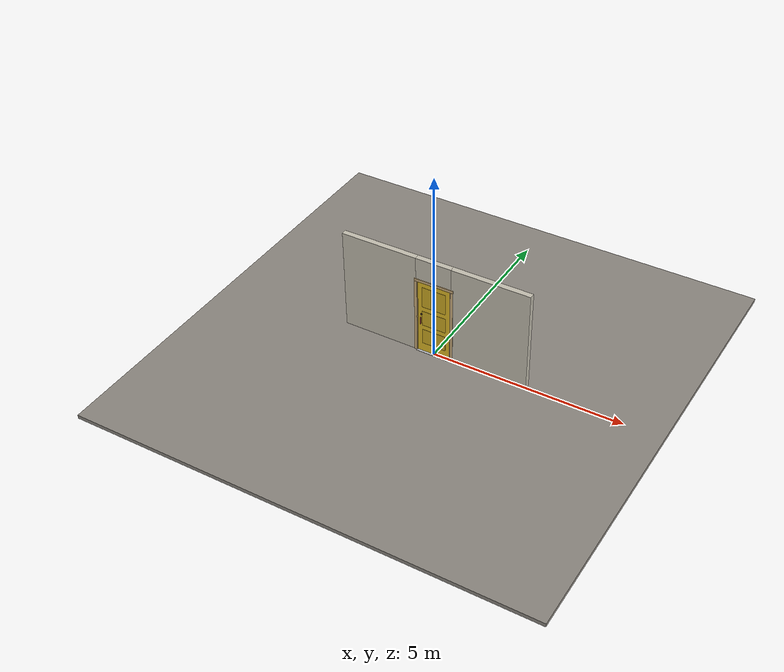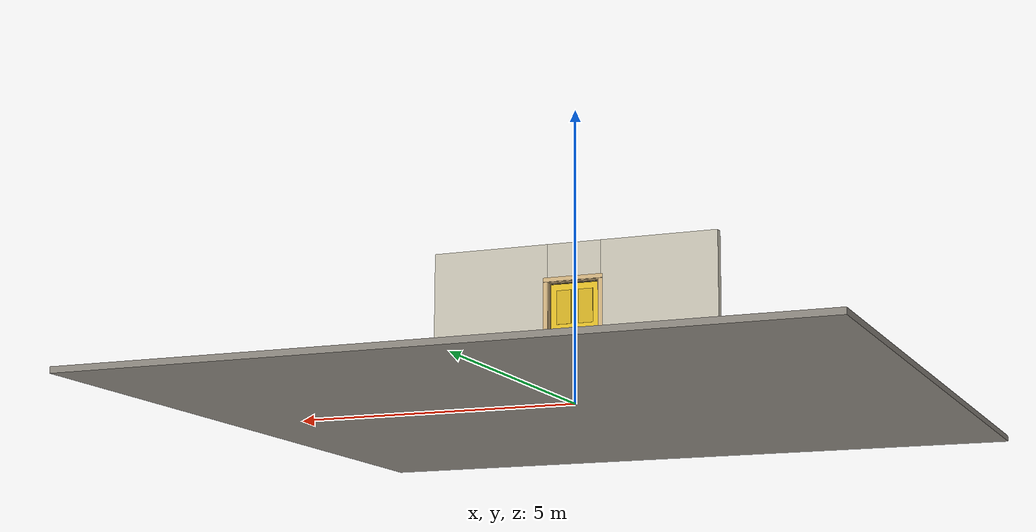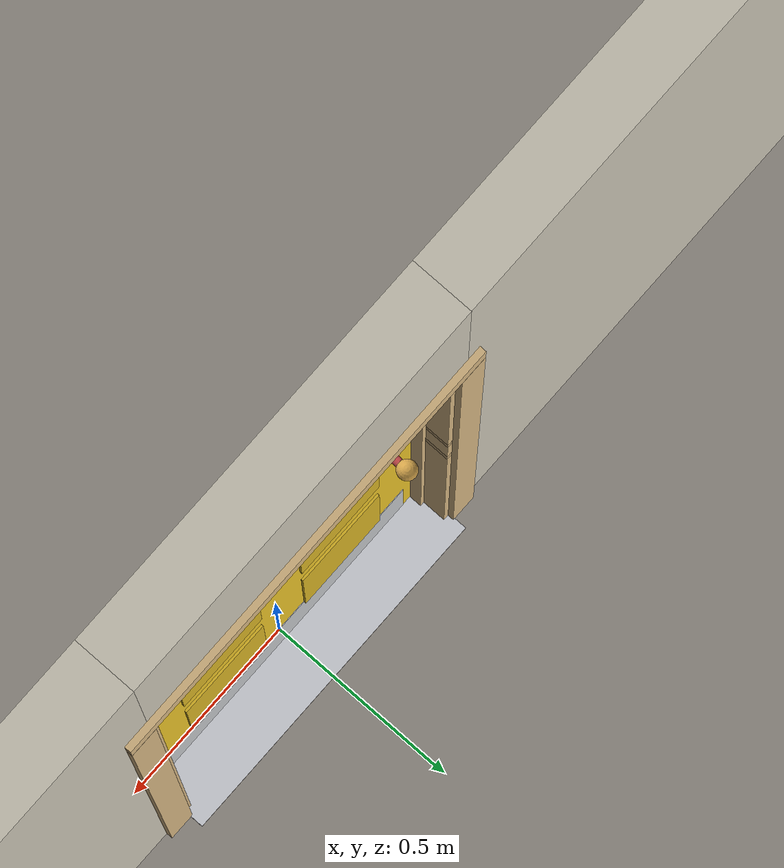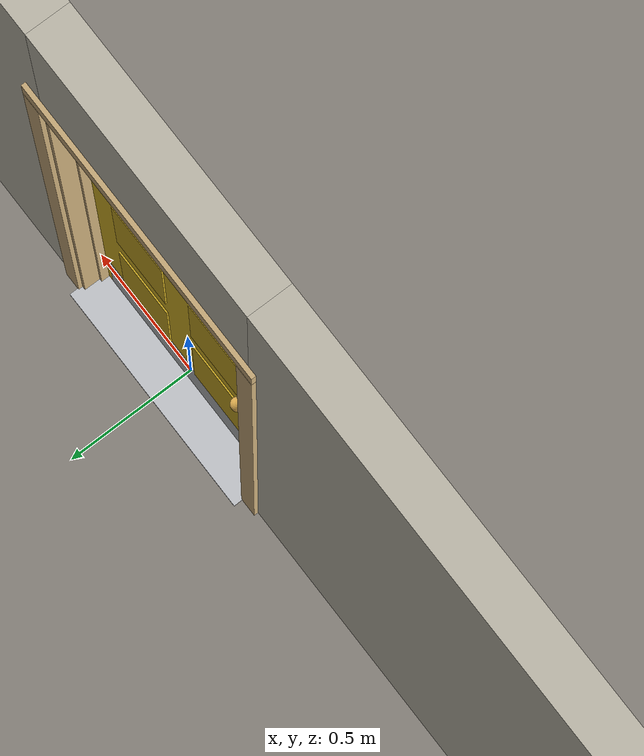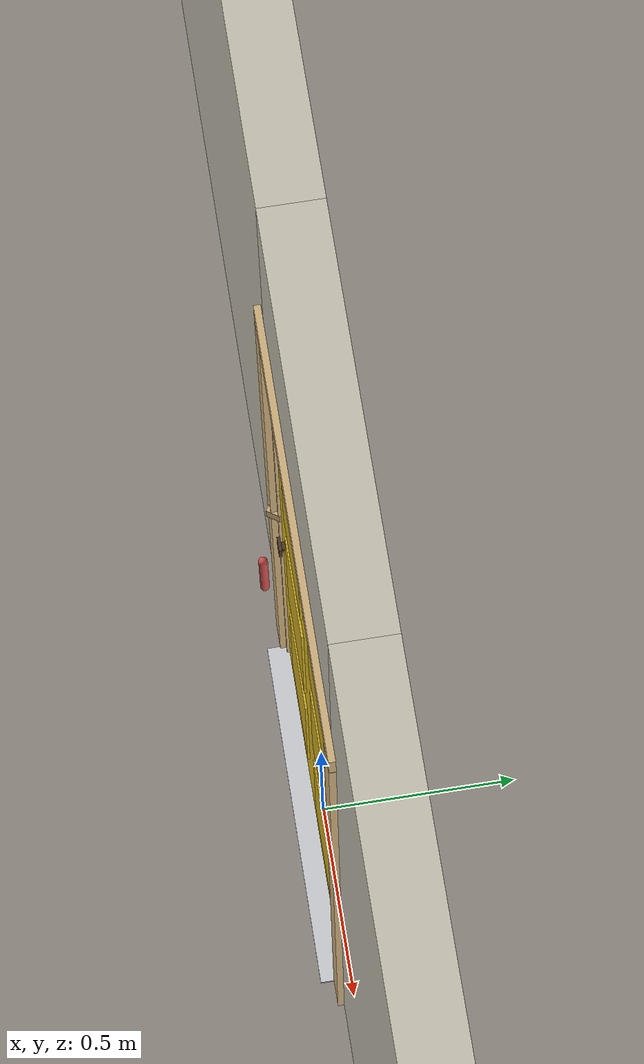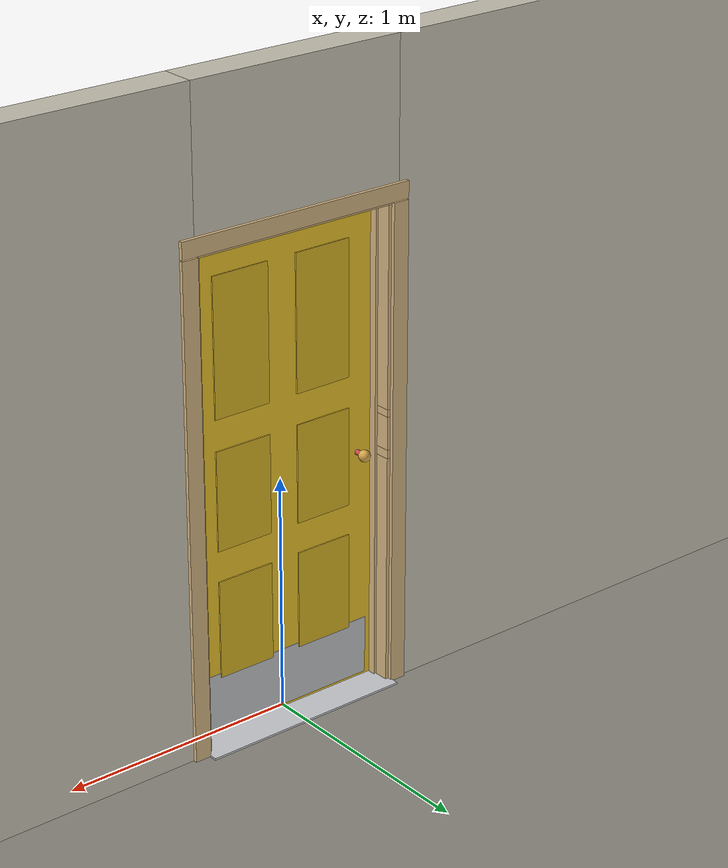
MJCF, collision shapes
<?xml version="1.0" ?>
<mujoco model="db0114_swing_single_full">
  <compiler angle="radian" meshdir="../../hardware" texturedir="../../textures" autolimits="true" inertiafromgeom="false"/>
  <option timestep="0.002" integrator="implicitfast" cone="elliptic" impratio="10" noslip_iterations="3">
    <flag multiccd="enable"/>
  </option>
  <size memory="16M"/>
  <default>
    <geom condim="4" solref="0.005 1" solimp="0.95 0.99 0.001"/>
    <joint solreflimit="0.005 1" solimplimit="0.95 0.99 0.001"/>
    <tendon solreflimit="0.005 1"/>
    <equality solref="0.002 1"/>
  </default>
  <visual>
    <headlight ambient="0.4 0.4 0.4" diffuse="0.7 0.7 0.7" specular="0.2 0.2 0.2"/>
    <quality shadowsize="4096"/>
    <map znear="0.01" zfar="60"/>
  </visual>
  <asset>
    <mesh name="cyl_face_e9e5036966" file="cyl_face_e9e5036966.obj"/>
    <mesh name="handleset_beb5526ad2" file="handleset_beb5526ad2.obj"/>
    <mesh name="hinge_e22b26c0c1" file="hinge_e22b26c0c1.obj"/>
    <mesh name="hinge_jamb_e1d088f8dc" file="hinge_jamb_e1d088f8dc.obj"/>
    <mesh name="knob_d1888f6f03" file="knob_d1888f6f03.obj"/>
    <mesh name="peephole_f829311a59" file="peephole_f829311a59.obj"/>
    <material name="mat_floor" rgba="0.55 0.53 0.5 1" specular="0.2" shininess="0.15" reflectance="0"/>
    <material name="mat_wall" rgba="0.78 0.76 0.7 1" specular="0.2" shininess="0.1" reflectance="0"/>
    <material name="mat_leaf" rgba="0.9 0.75 0.15 1" specular="0.23" shininess="0.52" reflectance="0.02"/>
    <material name="mat_leaf_panel" rgba="0.828 0.69 0.138 1" specular="0.23" shininess="0.52" reflectance="0.02"/>
    <material name="mat_hinge" rgba="0.65 0.66 0.68 1" specular="0.74" shininess="0.5" reflectance="0.36"/>
    <material name="mat_op_bronze" rgba="0.3 0.22 0.15 1" specular="0.74" shininess="0.5" reflectance="0.36"/>
    <material name="mat_op_brass" rgba="0.85 0.66 0.3 1" specular="0.8" shininess="0.75" reflectance="0.4"/>
    <material name="mat_trim" rgba="0.85 0.66 0.3 1" specular="0.8" shininess="0.75" reflectance="0.4"/>
    <material name="mat_bolt" rgba="0.85 0.66 0.3 1" specular="0.8" shininess="0.75" reflectance="0.4"/>
    <material name="mat_deadbolt" rgba="0.85 0.66 0.3 1" specular="0.8" shininess="0.75" reflectance="0.4"/>
    <material name="mat_frame" rgba="0.82 0.7 0.5 1" specular="0.2" shininess="0.45" reflectance="0"/>
    <material name="mat_seal" rgba="0.1 0.1 0.1 1" specular="0.2" shininess="0.1" reflectance="0"/>
    <material name="mat_threshold" rgba="0.8 0.81 0.83 1" specular="0.8" shininess="0.6" reflectance="0.4"/>
    <material name="mat_kick" rgba="0.75 0.76 0.77 1" specular="0.8" shininess="0.65" reflectance="0.4"/>
    <material name="mat_peephole" rgba="0.85 0.66 0.3 1" specular="0.8" shininess="0.75" reflectance="0.4"/>
    <texture name="skybox" type="skybox" builtin="gradient" rgb1="0.6 0.7 0.85" rgb2="0.9 0.92 0.95" width="256" height="256"/>
  </asset>
  <worldbody>
    <light name="sun" pos="1.5 -2.5 4" dir="-0.3 0.5 -0.8" directional="true" diffuse="0.8 0.8 0.8" specular="0.3 0.3 0.3" castshadow="true"/>
    <light name="fill" pos="-1.5 2.5 3" dir="0.3 -0.5 -0.7" directional="true" diffuse="0.35 0.35 0.4" castshadow="false"/>
    <camera name="robot_view" pos="0 -2.498687 1.734312" xyaxes="1 0 0 0 0.26963 0.962964" fovy="52"/>
    <camera name="far_view" pos="0 2.585687 1.734312" xyaxes="-1 0 0 0 -0.26963 0.962964" fovy="52"/>
    <camera name="iso" pos="-1.932062 -2.091938 2.141063" xyaxes="0.741536 -0.670913 0 0.242917 0.268487 0.932151" fovy="46"/>
    <camera name="detail_handle" pos="-0.146 -0.882 1.236" xyaxes="0.97561 0.219512 0 -0.070934 0.315262 0.94635" fovy="38"/>
    <geom name="floor" type="box" size="6 6 0.05" pos="0 0 -0.05" material="mat_floor" group="0" contype="1" conaffinity="1" friction="0.8 0.005 0.0001" density="2400"/>
    <geom name="wall_left" type="box" size="1.0075 0.0725 1.35" pos="-1.4925 0.0435 1.35" material="mat_wall" group="0" contype="1" conaffinity="1" friction="0.6 0.005 0.0001" density="800"/>
    <geom name="wall_right" type="box" size="1.0225 0.0725 1.35" pos="1.4775 0.0435 1.35" material="mat_wall" group="0" contype="1" conaffinity="1" friction="0.6 0.005 0.0001" density="800"/>
    <geom name="wall_header" type="box" size="0.47 0.0725 0.303" pos="-0.015 0.0435 2.397" material="mat_wall" group="0" contype="1" conaffinity="1" friction="0.6 0.005 0.0001" density="800"/>
    <geom name="hinge_0_jamb" type="mesh" mesh="hinge_jamb_e1d088f8dc" pos="0.433 -0.029 0.259" quat="0 0 1 0" material="mat_hinge" group="1" contype="0" conaffinity="0" density="7850"/>
    <geom name="hinge_1_jamb" type="mesh" mesh="hinge_jamb_e1d088f8dc" pos="0.433 -0.029 1.025" quat="0 0 1 0" material="mat_hinge" group="1" contype="0" conaffinity="0" density="7850"/>
    <geom name="hinge_2_jamb" type="mesh" mesh="hinge_jamb_e1d088f8dc" pos="0.433 -0.029 1.861" quat="0 0 1 0" material="mat_hinge" group="1" contype="0" conaffinity="0" density="7850"/>
    <geom name="leaf_deadbolt_strike_b" type="box" size="0.0155 0.003 0.0005" pos="-0.4355 0 1.1725" quat="0.5 0.5 0.5 0.5" material="mat_deadbolt" group="1" contype="0" conaffinity="0" density="7800"/>
    <geom name="leaf_deadbolt_strike_l" type="box" size="0.003 0.0155 0.0005" pos="-0.4355 -0.0125 1.191" quat="0.5 0.5 0.5 0.5" material="mat_deadbolt" group="1" contype="0" conaffinity="0" density="7800"/>
    <geom name="leaf_deadbolt_strike_t" type="box" size="0.0155 0.003 0.0005" pos="-0.4355 0 1.2095" quat="0.5 0.5 0.5 0.5" material="mat_deadbolt" group="1" contype="0" conaffinity="0" density="7800"/>
    <geom name="leaf_deadbolt_strike_r" type="box" size="0.003 0.0155 0.0005" pos="-0.4355 0.0125 1.191" quat="0.5 0.5 0.5 0.5" material="mat_deadbolt" group="1" contype="0" conaffinity="0" density="7800"/>
    <geom name="jamb_hinge" type="box" size="0.0095 0.0725 1.0225" pos="0.4455 0.0435 1.0225" material="mat_frame" group="0" contype="1" conaffinity="1" friction="0.6 0.005 0.0001" density="400"/>
    <geom name="strike_1016_wall_n" type="box" size="0.0245 0.05325 0.0183" pos="-0.4605 0.06275 1.016" material="mat_frame" group="0" contype="1" conaffinity="1" friction="0.6 0.005 0.0001" density="400"/>
    <geom name="strike_1016_wall_p" type="box" size="0.0245 0.008 0.0183" pos="-0.4605 -0.0175 1.016" material="mat_frame" group="0" contype="1" conaffinity="1" friction="0.6 0.005 0.0001" density="400"/>
    <geom name="strike_1016_ramp" type="box" size="0.0245 0.018028 0.0183" pos="-0.466385 -0.02691 1.016" quat="0.957092 0 0 -0.289784" material="mat_frame" group="0" contype="1" conaffinity="1" friction="0.12 0.005 0.0001" density="400"/>
    <geom name="strike_1016_back" type="box" size="0.013 0.0095 0.0183" pos="-0.472 0 1.016" material="mat_frame" group="0" contype="1" conaffinity="1" friction="0.6 0.005 0.0001" density="400"/>
    <geom name="strike_1191_wall_n" type="box" size="0.0245 0.05325 0.0155" pos="-0.4605 0.06275 1.191" material="mat_frame" group="0" contype="1" conaffinity="1" friction="0.6 0.005 0.0001" density="400"/>
    <geom name="strike_1191_wall_p" type="box" size="0.0245 0.00975 0.0155" pos="-0.4605 -0.01925 1.191" material="mat_frame" group="0" contype="1" conaffinity="1" friction="0.6 0.005 0.0001" density="400"/>
    <geom name="strike_1191_back" type="box" size="0.0098 0.0095 0.0155" pos="-0.4752 0 1.191" material="mat_frame" group="0" contype="1" conaffinity="1" friction="0.6 0.005 0.0001" density="400"/>
    <geom name="jamb_strike_0" type="box" size="0.0245 0.0725 0.49885" pos="-0.4605 0.0435 0.49885" material="mat_frame" group="0" contype="1" conaffinity="1" friction="0.6 0.005 0.0001" density="400"/>
    <geom name="jamb_strike_1" type="box" size="0.0245 0.0725 0.0706" pos="-0.4605 0.0435 1.1049" material="mat_frame" group="0" contype="1" conaffinity="1" friction="0.6 0.005 0.0001" density="400"/>
    <geom name="jamb_strike_2" type="box" size="0.0245 0.0725 0.41925" pos="-0.4605 0.0435 1.62575" material="mat_frame" group="0" contype="1" conaffinity="1" friction="0.6 0.005 0.0001" density="400"/>
    <geom name="jamb_head" type="box" size="0.47 0.0725 0.0095" pos="-0.015 0.0435 2.0545" material="mat_frame" group="0" contype="1" conaffinity="1" friction="0.6 0.005 0.0001" density="400"/>
    <geom name="head_stud" type="box" size="0.47 0.0725 0.015" pos="-0.015 0.0435 2.079" material="mat_wall" group="0" contype="1" conaffinity="1" friction="0.6 0.005 0.0001" density="500"/>
    <geom name="stop_hinge" type="box" size="0.0055 0.016 1.0225" pos="0.4305 0.0385 1.0225" material="mat_frame" group="0" contype="1" conaffinity="1" friction="0.6 0.005 0.0001" density="400"/>
    <geom name="stop_strike" type="box" size="0.0055 0.016 1.0225" pos="-0.4305 0.0385 1.0225" material="mat_frame" group="0" contype="1" conaffinity="1" friction="0.6 0.005 0.0001" density="400"/>
    <geom name="stop_head" type="box" size="0.436 0.016 0.0055" pos="0 0.0385 2.0395" material="mat_frame" group="0" contype="1" conaffinity="1" friction="0.6 0.005 0.0001" density="400"/>
    <geom name="seal_hinge" type="box" size="0.004 0.003 1.0225" pos="0.433 0.025 1.0225" material="mat_seal" group="1" contype="0" conaffinity="0" density="1100"/>
    <geom name="seal_strike" type="box" size="0.004 0.003 1.0225" pos="-0.433 0.025 1.0225" material="mat_seal" group="1" contype="0" conaffinity="0" density="1100"/>
    <geom name="seal_head" type="box" size="0.416 0.003 0.008" pos="0 0.025 2.033" material="mat_seal" group="1" contype="0" conaffinity="0" density="1100"/>
    <geom name="casing_l_n" type="box" size="0.035 0.008 1.032" pos="-0.485 -0.037 1.0225" material="mat_frame" group="2" contype="0" conaffinity="0" density="400"/>
    <geom name="casing_r_n" type="box" size="0.035 0.008 1.032" pos="0.485 -0.037 1.0225" material="mat_frame" group="2" contype="0" conaffinity="0" density="400"/>
    <geom name="casing_h_n" type="box" size="0.52 0.008 0.035" pos="0 -0.037 2.094" material="mat_frame" group="2" contype="0" conaffinity="0" density="400"/>
    <geom name="casing_l_p" type="box" size="0.035 0.008 1.032" pos="-0.485 0.124 1.0225" material="mat_frame" group="2" contype="0" conaffinity="0" density="400"/>
    <geom name="casing_r_p" type="box" size="0.035 0.008 1.032" pos="0.485 0.124 1.0225" material="mat_frame" group="2" contype="0" conaffinity="0" density="400"/>
    <geom name="casing_h_p" type="box" size="0.52 0.008 0.035" pos="0 0.124 2.094" material="mat_frame" group="2" contype="0" conaffinity="0" density="400"/>
    <geom name="threshold" type="box" size="0.455 0.1225 0.004" pos="0 0.0435 0.004" material="mat_threshold" group="0" contype="1" conaffinity="1" friction="0.6 0.005 0.0001" density="2700"/>
    <site name="approach_point" pos="0 -1.5 0" quat="1 0 0 0" size="0.05" rgba="0.2 0.9 0.2 0.5" group="4"/>
    <site name="goal_point" pos="0 1.5 0" quat="1 0 0 0" size="0.05" rgba="0.2 0.9 0.2 0.5" group="4"/>
    <site name="door_plane_center" pos="0 0 1.0225" quat="1 0 0 0" size="0.02" rgba="0.2 0.9 0.2 0.5" group="4"/>
    <body name="leaf" pos="0.436 0 0">
      <inertial pos="-0.43733 -0.000091 0.942748" mass="26.817732" quat="0.497988 0.503032 -0.499343 0.499624" diaginertia="1.797248227 9.83153132 11.612279051"/>
      <joint name="leaf_hinge" type="hinge" axis="0 0 1" pos="-0.003 -0.029 0" limited="true" range="0 2.356194" solreflimit="0.02 1" damping="0.254501" frictionloss="2.427107" armature="0.02"/>
      <geom name="leaf_slab" type="box" size="0.432 0.022 1.016" pos="-0.435 0 1.025" material="mat_leaf" group="0" contype="1" conaffinity="1" friction="0.4 0.005 0.0001" density="1"/>
      <geom name="leaf_panel_0_n" type="box" size="0.12598 0.003 0.209032" pos="-0.24402 -0.025 0.461552" material="mat_leaf_panel" group="1" contype="0" conaffinity="0" density="1"/>
      <geom name="leaf_panel_0_p" type="box" size="0.12598 0.003 0.209032" pos="-0.24402 0.025 0.461552" material="mat_leaf_panel" group="1" contype="0" conaffinity="0" density="1"/>
      <geom name="leaf_panel_1_n" type="box" size="0.12598 0.003 0.209032" pos="-0.62598 -0.025 0.461552" material="mat_leaf_panel" group="1" contype="0" conaffinity="0" density="1"/>
      <geom name="leaf_panel_1_p" type="box" size="0.12598 0.003 0.209032" pos="-0.62598 0.025 0.461552" material="mat_leaf_panel" group="1" contype="0" conaffinity="0" density="1"/>
      <geom name="leaf_panel_2_n" type="box" size="0.12598 0.003 0.209032" pos="-0.24402 -0.025 1.009616" material="mat_leaf_panel" group="1" contype="0" conaffinity="0" density="1"/>
      <geom name="leaf_panel_2_p" type="box" size="0.12598 0.003 0.209032" pos="-0.24402 0.025 1.009616" material="mat_leaf_panel" group="1" contype="0" conaffinity="0" density="1"/>
      <geom name="leaf_panel_3_n" type="box" size="0.12598 0.003 0.209032" pos="-0.62598 -0.025 1.009616" material="mat_leaf_panel" group="1" contype="0" conaffinity="0" density="1"/>
      <geom name="leaf_panel_3_p" type="box" size="0.12598 0.003 0.209032" pos="-0.62598 0.025 1.009616" material="mat_leaf_panel" group="1" contype="0" conaffinity="0" density="1"/>
      <geom name="leaf_panel_4_n" type="box" size="0.12598 0.003 0.285376" pos="-0.24402 -0.025 1.634024" material="mat_leaf_panel" group="1" contype="0" conaffinity="0" density="1"/>
      <geom name="leaf_panel_4_p" type="box" size="0.12598 0.003 0.285376" pos="-0.24402 0.025 1.634024" material="mat_leaf_panel" group="1" contype="0" conaffinity="0" density="1"/>
      <geom name="leaf_panel_5_n" type="box" size="0.12598 0.003 0.285376" pos="-0.62598 -0.025 1.634024" material="mat_leaf_panel" group="1" contype="0" conaffinity="0" density="1"/>
      <geom name="leaf_panel_5_p" type="box" size="0.12598 0.003 0.285376" pos="-0.62598 0.025 1.634024" material="mat_leaf_panel" group="1" contype="0" conaffinity="0" density="1"/>
      <geom name="hinge_0" type="mesh" mesh="hinge_e22b26c0c1" pos="-0.003 -0.029 0.259" quat="0 0 1 0" material="mat_hinge" group="1" contype="0" conaffinity="0" density="7850"/>
      <geom name="hinge_1" type="mesh" mesh="hinge_e22b26c0c1" pos="-0.003 -0.029 1.025" quat="0 0 1 0" material="mat_hinge" group="1" contype="0" conaffinity="0" density="7850"/>
      <geom name="hinge_2" type="mesh" mesh="hinge_e22b26c0c1" pos="-0.003 -0.029 1.861" quat="0 0 1 0" material="mat_hinge" group="1" contype="0" conaffinity="0" density="7850"/>
      <geom name="leaf_handleset_n" type="mesh" mesh="handleset_beb5526ad2" pos="-0.762 -0.022 0.956" quat="0.707107 0.707107 0 0" material="mat_op_bronze" group="1" contype="0" conaffinity="0" density="3000"/>
      <geom name="leaf_handleset_col_n" type="capsule" size="0.011 0.09" pos="-0.762 -0.082 0.956" material="mat_op_bronze" group="3" contype="1" conaffinity="1" rgba="0.8 0.3 0.3 0.25" friction="0.7 0.01 0.0001" density="3000"/>
      <geom name="leaf_latch_bolt_faceplate" type="box" size="0.0006 0.014 0.0283" pos="-0.8664 0 1.016" material="mat_bolt" group="1" contype="0" conaffinity="0" density="8500"/>
      <geom name="leaf_deadbolt_faceplate" type="box" size="0.0006 0.014 0.0245" pos="-0.8664 0 1.191" material="mat_deadbolt" group="1" contype="0" conaffinity="0" density="8500"/>
      <geom name="leaf_deadbolt_cylinder_face" type="mesh" mesh="cyl_face_e9e5036966" pos="-0.802 0.022 1.191" quat="0 0 0.707107 0.707107" material="mat_deadbolt" group="1" contype="0" conaffinity="0" density="7100"/>
      <geom name="kick_plate_p" type="box" size="0.402 0.0008 0.125" pos="-0.435 0.0228 0.144" material="mat_kick" group="2" contype="0" conaffinity="0" density="7900"/>
      <geom name="peephole" type="mesh" mesh="peephole_f829311a59" pos="-0.435 -0.022 1.509" quat="0 0 -0.707107 0.707107" material="mat_peephole" group="2" contype="0" conaffinity="0" density="8500"/>
      <site name="leaf_handleset_grip_n" pos="-0.762 -0.082 0.956" quat="1 0 0 0" size="0.012" rgba="0.2 0.9 0.2 0.5" group="4"/>
      <site name="leaf_edge_mid" pos="-0.867 0 1.016" quat="1 0 0 0" size="0.02" rgba="0.2 0.9 0.2 0.5" group="4"/>
      <body name="leaf_handle" pos="-0.797 0 1.016">
        <inertial pos="0 0.052948 0" mass="0.60261" quat="0.5 0.5 0.5 0.5" diaginertia="0.000156736 0.000451151 0.000451151"/>
        <joint name="leaf_handle_hinge" type="hinge" axis="0 1 0" limited="true" range="0 0.87" damping="0.142525" frictionloss="0.038" stiffness="0.5" springref="-0.5" armature="0.01"/>
        <geom name="leaf_handle_spindle" type="cylinder" size="0.006 0.03" pos="0 0 0" quat="0.707107 -0.707107 0 0" material="mat_op_brass" group="1" contype="0" conaffinity="0" density="7850"/>
        <geom name="leaf_handle_knob_p" type="mesh" mesh="knob_d1888f6f03" pos="0 0.022 0" quat="0 0 0.707107 0.707107" material="mat_op_brass" group="1" contype="0" conaffinity="0" density="3000"/>
        <geom name="leaf_handle_knob_col_p" type="sphere" size="0.0243" pos="0 0.0685 0" material="mat_op_brass" group="0" contype="1" conaffinity="1" friction="0.9 0.01 0.0001" density="3000"/>
        <geom name="leaf_handle_knob_neck_p" type="cylinder" size="0.011 0.012" pos="0 0.034 0" quat="0.707107 -0.707107 0 0" material="mat_op_brass" group="3" contype="1" conaffinity="1" rgba="0.8 0.3 0.3 0.25" friction="0.6 0.005 0.0001" density="3000"/>
        <site name="leaf_handle_grip_p" pos="0 0.0685 0" quat="1 0 0 0" size="0.012" rgba="0.2 0.9 0.2 0.5" group="4"/>
      </body>
      <body name="leaf_thumbpiece" pos="-0.762 -0.04 1.128">
        <inertial pos="0 0.004 0" mass="0.05184" quat="-0.5 0.5 0.5 0.5" diaginertia="0.000006981 0.000007488 0.000009124"/>
        <joint name="leaf_thumbpiece_hinge" type="hinge" axis="-1 0 0" pos="0 0 0.02" limited="true" range="0 0.35" damping="0.219407" frictionloss="0.058" stiffness="1.2" springref="-0.416667" armature="0.01"/>
        <geom name="leaf_thumbpiece_geom" type="box" size="0.018 0.004 0.02" pos="0 0 0" material="mat_op_bronze" group="0" contype="1" conaffinity="1" friction="0.6 0.005 0.0001" density="3000"/>
        <geom name="leaf_thumbpiece_boss" type="box" size="0.01 0.012 0.006" pos="0 0.012 0" material="mat_op_bronze" group="1" contype="0" conaffinity="0" density="3000"/>
        <site name="leaf_thumb_push" pos="0 -0.005 0.01" quat="1 0 0 0" size="0.01" rgba="0.2 0.9 0.2 0.5" group="4"/>
      </body>
      <body name="leaf_latch_bolt" pos="-0.867 0 1.016">
        <inertial pos="0.0055 0 0" mass="0.074627" quat="0.92388 0.382683 0 0" diaginertia="0.000002271 0.000013255 0.000013255"/>
        <joint name="leaf_latch_bolt_slide" type="slide" axis="1 0 0" limited="true" range="0 0.019" damping="2" frictionloss="0.3" stiffness="600" springref="-0.01" armature="0.1"/>
        <geom name="leaf_latch_bolt_capsule" type="capsule" size="0.008 0.0165" pos="0.0055 0 0" quat="0.707107 0 -0.707107 0" material="mat_bolt" group="0" contype="1" conaffinity="1" friction="0.2 0.005 0.0001" density="8500"/>
      </body>
      <body name="leaf_deadbolt" pos="-0.867 0 1.191">
        <inertial pos="0.0023 0 0" mass="0.18836" quat="0 0 0.707107 0.707107" diaginertia="0.000013829 0.000052194 0.000057986"/>
        <geom name="leaf_deadbolt_box" type="box" size="0.0277 0.008 0.0125" pos="0.0023 0 0" material="mat_deadbolt" group="0" contype="1" conaffinity="1" friction="0.3 0.005 0.0001" density="8500"/>
      </body>
    </body>
  </worldbody>
  <tendon>
    <fixed name="leaf_thumb_coupling" limited="true" range="0 10">
      <joint joint="leaf_latch_bolt_slide" coef="1"/>
      <joint joint="leaf_thumbpiece_hinge" coef="-0.059375"/>
    </fixed>
    <fixed name="leaf_latch_bolt_coupling" limited="true" range="0 10">
      <joint joint="leaf_latch_bolt_slide" coef="1"/>
      <joint joint="leaf_handle_hinge" coef="-0.023457"/>
    </fixed>
  </tendon>
  <sensor>
    <jointpos name="leaf_hinge_pos" joint="leaf_hinge"/>
    <jointvel name="leaf_hinge_vel" joint="leaf_hinge"/>
    <jointpos name="leaf_handle_hinge_pos" joint="leaf_handle_hinge"/>
    <jointvel name="leaf_handle_hinge_vel" joint="leaf_handle_hinge"/>
    <jointpos name="leaf_thumbpiece_hinge_pos" joint="leaf_thumbpiece_hinge"/>
    <jointvel name="leaf_thumbpiece_hinge_vel" joint="leaf_thumbpiece_hinge"/>
    <jointpos name="leaf_latch_bolt_slide_pos" joint="leaf_latch_bolt_slide"/>
    <jointvel name="leaf_latch_bolt_slide_vel" joint="leaf_latch_bolt_slide"/>
  </sensor>
</mujoco>
